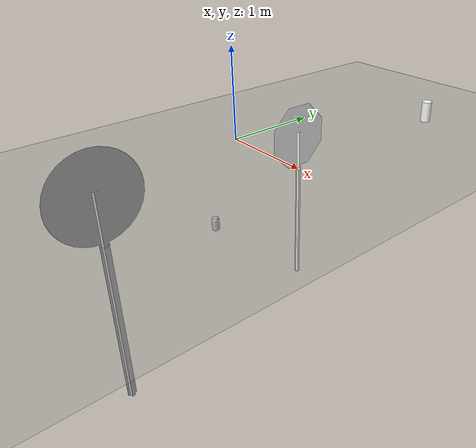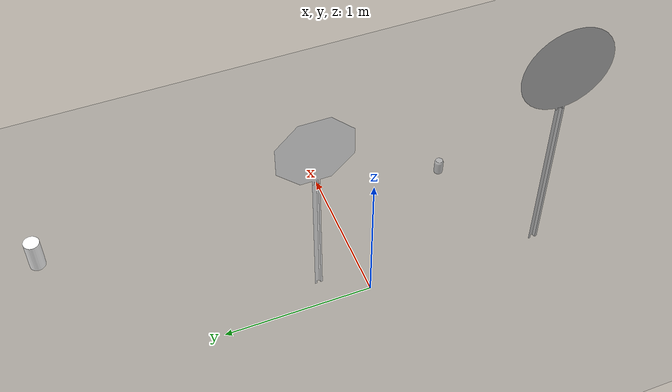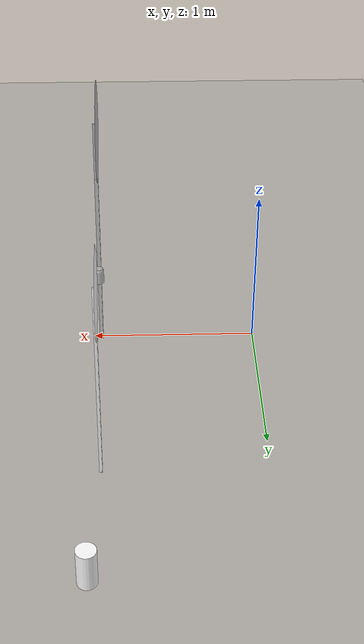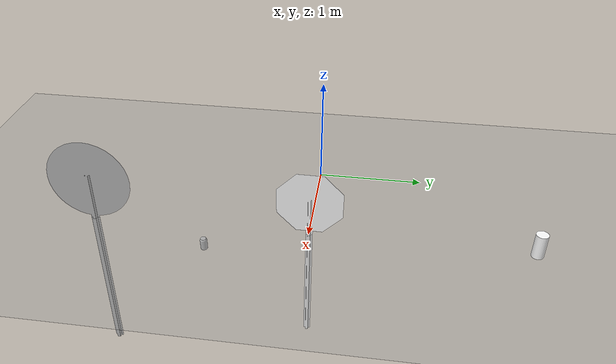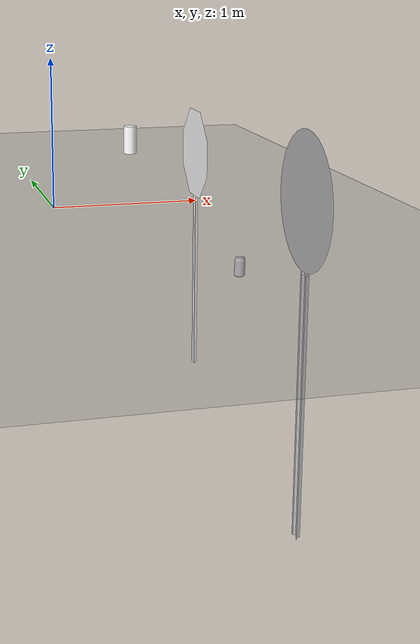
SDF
<sdf version="1.6">
 <world name="default">
  <light name="sun" type="directional">
   <pose>0 0 10 0 -0 0</pose>
   <diffuse>0.8 0.8 0.8 1</diffuse>
   <specular>0.2 0.2 0.2 1</specular>
   <attenuation>
    <range>1000</range>
    <constant>0.9</constant>
    <linear>0.01</linear>
    <quadratic>0.001</quadratic>
   </attenuation>
   <direction>0.5 0.1 -0.9</direction>
  </light>
  <scene><ambient>0.4 0.4 0.4 1</ambient><background>0.7 0.7 0.7 1</background><shadows>1</shadows></scene>
  <physics name="default_physics" default="0" type="ode">
   <max_step_size>0.01</max_step_size>
   <real_time_factor>1</real_time_factor>
   <real_time_update_rate>100</real_time_update_rate>
  </physics>
  <model name="ground_plane_0">
   <static>1</static>
   <link name="link">
    <collision name="collision">
     <geometry><plane><normal>0 0 1</normal><size>100 100</size></plane></geometry>
     <surface><friction><ode><mu>100</mu><mu2>50</mu2></ode></friction></surface>
    </collision>
    <visual name="visual">
     <cast_shadows>0</cast_shadows>
     <geometry><plane><normal>0 0 1</normal><size>100 100</size></plane></geometry>
     <material>
      <script><uri>file://media/materials/scripts/gazebo.material</uri><name>Gazebo/Grey</name></script>
     </material>
    </visual>
    <velocity_decay><linear>0</linear><angular>0</angular></velocity_decay>
   </link>
   <pose>0.497681 0 0 0 -0 0</pose>
  </model>
  <gravity>0 0 -9.8</gravity>
  <magnetic_field>6e-06 2.3e-05 -4.2e-05</magnetic_field>
  <atmosphere type="adiabatic"/>
  <spherical_coordinates>
   <surface_model>EARTH_WGS84</surface_model>
   <latitude_deg>0</latitude_deg>
   <longitude_deg>0</longitude_deg>
   <elevation>0</elevation>
   <heading_deg>0</heading_deg>
  </spherical_coordinates>
  <model name="beer_0">
   <link name="link">
    <pose>-0 0 0.115 0 -0 0</pose>
    <inertial>
     <mass>0.39</mass>
     <inertia><ixx>0.00058</ixx><ixy>0</ixy><ixz>0</ixz><iyy>0.00058</iyy><iyz>0</iyz><izz>0.00019</izz></inertia>
    </inertial>
    <visual name="visual">
     <geometry><cylinder><radius>0.055</radius><length>0.23</length></cylinder></geometry>
     <material>
      <script>
       <uri>model://beer/materials/scripts</uri>
       <uri>model://beer/materials/textures</uri>
       <name>Beer/Diffuse</name>
      </script>
      <ambient>1 1 1 1</ambient>
      <diffuse>1 1 1 1</diffuse>
      <specular>0 0 0 1</specular>
      <emissive>0 0 0 1</emissive>
     </material>
    </visual>
    <collision name="collision">
     <geometry><cylinder><radius>0.055</radius><length>0.23</length></cylinder></geometry>
     <surface>
      <friction>
       <ode><mu>1</mu><mu2>1</mu2><fdir1>0 0 0</fdir1><slip1>0</slip1><slip2>0</slip2></ode>
       <torsional>
        <coefficient>1</coefficient>
        <patch_radius>0</patch_radius>
        <surface_radius>0</surface_radius>
        <use_patch_radius>1</use_patch_radius>
        <ode><slip>0</slip></ode>
       </torsional>
      </friction>
      <bounce><restitution_coefficient>0</restitution_coefficient><threshold>1e+06</threshold></bounce>
      <contact>
       <collide_without_contact>0</collide_without_contact>
       <collide_without_contact_bitmask>1</collide_without_contact_bitmask>
       <collide_bitmask>1</collide_bitmask>
       <ode>
        <soft_cfm>0</soft_cfm>
        <soft_erp>0.2</soft_erp>
        <kp>1e+13</kp>
        <kd>1</kd>
        <max_vel>0.01</max_vel>
        <min_depth>0</min_depth>
       </ode>
       <bullet>
        <split_impulse>1</split_impulse>
        <split_impulse_penetration_threshold>-0.01</split_impulse_penetration_threshold>
        <soft_cfm>0</soft_cfm>
        <soft_erp>0.2</soft_erp>
        <kp>1e+13</kp>
        <kd>1</kd>
       </bullet>
      </contact>
     </surface>
    </collision>
   </link>
   <static>1</static>
   <pose>1 2 -0.00088 5e-05 -1e-05 -0.002884</pose>
  </model>
  <model name="coke_can_0">
   <link name="link">
    <inertial>
     <mass>0.39</mass>
     <inertia><ixx>0.00058</ixx><ixy>0</ixy><ixz>0</ixz><iyy>0.00058</iyy><iyz>0</iyz><izz>0.00019</izz></inertia>
    </inertial>
    <visual name="visual">
     <pose>0 0 -0.46 0 -0 0</pose>
     <geometry><mesh><uri>model://coke_can/meshes/coke_can.dae</uri><scale>1 1 1</scale></mesh></geometry>
    </visual>
    <collision name="collision">
     <pose>0 0 -0.46 0 -0 0</pose>
     <geometry>
      <mesh><uri>/home/lukasz/.gazebo/models/coke_can/meshes/coke_can.dae</uri><scale>1 1 1</scale></mesh>
     </geometry>
     <surface>
      <friction>
       <ode><mu>1</mu><mu2>1</mu2><fdir1>0 0 0</fdir1><slip1>0</slip1><slip2>0</slip2></ode>
       <torsional>
        <coefficient>1</coefficient>
        <patch_radius>0</patch_radius>
        <surface_radius>0</surface_radius>
        <use_patch_radius>1</use_patch_radius>
        <ode><slip>0</slip></ode>
       </torsional>
      </friction>
      <bounce><restitution_coefficient>0</restitution_coefficient><threshold>1e+06</threshold></bounce>
      <contact>
       <collide_without_contact>0</collide_without_contact>
       <collide_without_contact_bitmask>1</collide_without_contact_bitmask>
       <collide_bitmask>1</collide_bitmask>
       <ode>
        <soft_cfm>0</soft_cfm>
        <soft_erp>0.2</soft_erp>
        <kp>1e+13</kp>
        <kd>1</kd>
        <max_vel>0.01</max_vel>
        <min_depth>0</min_depth>
       </ode>
       <bullet>
        <split_impulse>1</split_impulse>
        <split_impulse_penetration_threshold>-0.01</split_impulse_penetration_threshold>
        <soft_cfm>0</soft_cfm>
        <soft_erp>0.2</soft_erp>
        <kp>1e+13</kp>
        <kd>1</kd>
       </bullet>
      </contact>
     </surface>
    </collision>
   </link>
   <static>1</static>
   <pose>1.00796 -0.99716 -0.004071 -0.033616 0.012074 -2.14289</pose>
  </model>
  <model name="Stop_Sign_0_0">
   <link name="Stop Sign_0::link">
    <inertial>
     <inertia><ixx>1</ixx><ixy>0</ixy><ixz>0</ixz><iyy>1</iyy><iyz>0</iyz><izz>1</izz></inertia>
     <mass>1</mass>
    </inertial>
    <visual name="visual">
     <geometry><mesh><uri>model://stop_sign/meshes/stop_sign.dae</uri><scale>1 1 1</scale></mesh></geometry>
     <material>
      <script>
       <uri>model://stop_sign/materials/scripts</uri>
       <uri>model://stop_sign/materials/textures</uri>
       <name>StopSign/Diffuse</name>
      </script>
      <ambient>1 1 1 1</ambient>
      <diffuse>1 1 1 1</diffuse>
      <specular>0 0 0 1</specular>
      <emissive>0 0 0 1</emissive>
      <lighting>0</lighting>
      <shader type="vertex"><normal_map>__default__</normal_map></shader>
     </material>
    </visual>
    <collision name="collision">
     <geometry>
      <mesh><uri>/home/lukasz/.gazebo/models/stop_sign/meshes/stop_sign.dae</uri><scale>1 1 1</scale></mesh>
     </geometry>
     <surface>
      <friction>
       <ode><mu>1</mu><mu2>1</mu2><fdir1>0 0 0</fdir1><slip1>0</slip1><slip2>0</slip2></ode>
       <torsional>
        <coefficient>1</coefficient>
        <patch_radius>0</patch_radius>
        <surface_radius>0</surface_radius>
        <use_patch_radius>1</use_patch_radius>
        <ode><slip>0</slip></ode>
       </torsional>
      </friction>
      <bounce><restitution_coefficient>0</restitution_coefficient><threshold>1e+06</threshold></bounce>
      <contact>
       <collide_without_contact>0</collide_without_contact>
       <collide_without_contact_bitmask>1</collide_without_contact_bitmask>
       <collide_bitmask>1</collide_bitmask>
       <ode>
        <soft_cfm>0</soft_cfm>
        <soft_erp>0.2</soft_erp>
        <kp>1e+13</kp>
        <kd>1</kd>
        <max_vel>0.01</max_vel>
        <min_depth>0</min_depth>
       </ode>
       <bullet>
        <split_impulse>1</split_impulse>
        <split_impulse_penetration_threshold>-0.01</split_impulse_penetration_threshold>
        <soft_cfm>0</soft_cfm>
        <soft_erp>0.2</soft_erp>
        <kp>1e+13</kp>
        <kd>1</kd>
       </bullet>
      </contact>
     </surface>
    </collision>
   </link>
   <static>1</static>
   <pose>1 0 -1.18848 -0.001254 -0.004025 -1.57384</pose>
  </model>
  <model name="Speed_limit_0_0">
   <link name="link">
    <gravity>0</gravity>
    <inertial>
     <mass>1</mass>
     <inertia><ixx>1</ixx><ixy>0</ixy><ixz>0</ixz><iyy>1</iyy><iyz>0</iyz><izz>1</izz></inertia>
    </inertial>
    <visual name="visual">
     <geometry>
      <mesh><scale>10 10 10</scale><uri>model://speed_limit_sign/meshes/speed_limit_sign.dae</uri></mesh>
     </geometry>
     <material><lighting>0</lighting><shader type="vertex"><normal_map>__default__</normal_map></shader></material>
    </visual>
    <collision name="collision">
     <geometry>
      <mesh>
       <uri>/home/lukasz/.gazebo/models/speed_limit_sign/meshes/speed_limit_sign.dae</uri>
       <scale>10 10 10</scale>
      </mesh>
     </geometry>
     <surface>
      <friction>
       <ode><mu>1</mu><mu2>1</mu2><fdir1>0 0 0</fdir1><slip1>0</slip1><slip2>0</slip2></ode>
       <torsional>
        <coefficient>1</coefficient>
        <patch_radius>0</patch_radius>
        <surface_radius>0</surface_radius>
        <use_patch_radius>1</use_patch_radius>
        <ode><slip>0</slip></ode>
       </torsional>
      </friction>
      <bounce><restitution_coefficient>0</restitution_coefficient><threshold>1e+06</threshold></bounce>
      <contact>
       <collide_without_contact>0</collide_without_contact>
       <collide_without_contact_bitmask>1</collide_without_contact_bitmask>
       <collide_bitmask>1</collide_bitmask>
       <ode>
        <soft_cfm>0</soft_cfm>
        <soft_erp>0.2</soft_erp>
        <kp>1e+13</kp>
        <kd>1</kd>
        <max_vel>0.01</max_vel>
        <min_depth>0</min_depth>
       </ode>
       <bullet>
        <split_impulse>1</split_impulse>
        <split_impulse_penetration_threshold>-0.01</split_impulse_penetration_threshold>
        <soft_cfm>0</soft_cfm>
        <soft_erp>0.2</soft_erp>
        <kp>1e+13</kp>
        <kd>1</kd>
       </bullet>
      </contact>
     </surface>
    </collision>
   </link>
   <static>1</static>
   <allow_auto_disable>0</allow_auto_disable>
   <pose>1 -2 -1.56617 0 -0 1.56794</pose>
  </model>
 </world>
</sdf>
